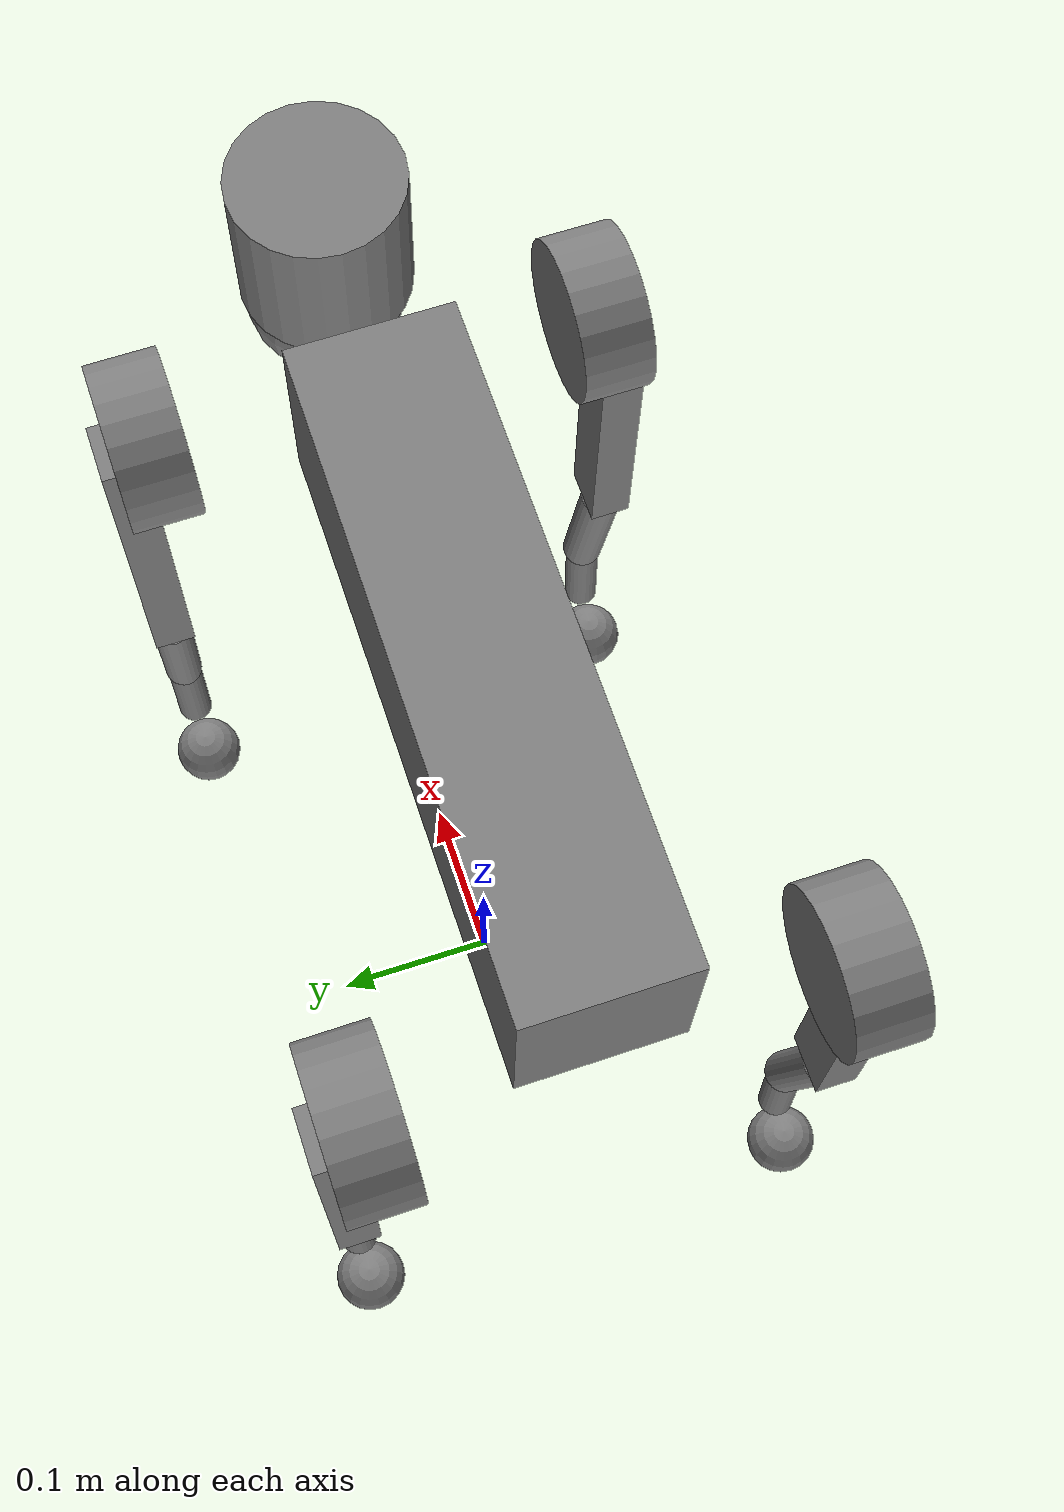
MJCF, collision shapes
<mujoco model="go2 feet only">
  <compiler
    angle="radian"
    meshdir="assets"
    autolimits="true"/>

  <option iterations="1" ls_iterations="5" timestep="0.004" integrator="Euler">
    <flag eulerdamp="disable"/>
  </option>

  <default>
    <default class="go2">
      <geom condim="1" contype="0" conaffinity="0"/>
      <joint axis="0 1 0" damping="0.1" armature="0.01" frictionloss="0.2"/>
      <position forcerange="-23.7 23.7" inheritrange="1" kp="35"/>
      <default class="abduction">
        <joint axis="1 0 0" range="-1.0472 1.0472"/>
      </default>
      <default class="hip">
        <default class="front_hip">
          <joint range="-1.5708 3.4907"/>
        </default>
        <default class="back_hip">
          <joint range="-0.5236 4.5379"/>
        </default>
      </default>
      <default class="knee">
        <joint range="-2.7227 -0.83776"/>
        <position forcerange="-45.43 45.43"/>
      </default>
      <default class="visual">
        <geom type="mesh" contype="0" conaffinity="0" group="2"/>
      </default>
      <default class="collision">
        <geom group="3"/>
      </default>
      <default class="foot">
        <geom
          size="0.022"
          pos="-0.002 0 -0.213"
          type="sphere"
          priority="1"
          condim="3"
          friction="0.6 0.02 0.01"
          contype="0"
          conaffinity="1"/>
      </default>
    </default>
  </default>

  <asset>
    <material name="metal" rgba=".9 .95 .95 1"/>
    <material name="black" rgba="0 0 0 1"/>
    <material name="white" rgba="1 1 1 1"/>
    <material name="gray" rgba="0.671705 0.692426 0.774270 1"/>

    <mesh file="base_0.obj"/>
    <mesh file="base_1.obj"/>
    <mesh file="base_2.obj"/>
    <mesh file="base_3.obj"/>
    <mesh file="base_4.obj"/>
    <mesh file="hip_0.obj"/>
    <mesh file="hip_1.obj"/>
    <mesh file="thigh_0.obj"/>
    <mesh file="thigh_1.obj"/>
    <mesh file="thigh_mirror_0.obj"/>
    <mesh file="thigh_mirror_1.obj"/>
    <mesh file="calf_0.obj"/>
    <mesh file="calf_1.obj"/>
    <mesh file="calf_mirror_0.obj"/>
    <mesh file="calf_mirror_1.obj"/>
    <mesh file="foot.obj"/>
  </asset>

  <worldbody>
    <light name="spotlight" mode="targetbodycom" target="base_link" pos="3 0 4"/>
    <body name="base_link" pos="0 0 0.445" childclass="go2">
      <camera name="track" pos="0.846 -1.3 0.316" xyaxes="0.866 0.500 0.000 -0.171 0.296 0.940" mode="trackcom"/>
      <camera name="side" pos="0 -1 .3" xyaxes="1 0 0 0 1 2" mode="trackcom"/>
      <site name="head" pos="0.3 0 0" rgba="1 0 0 1" size="0.02" group="5"/>
      <inertial
        pos="0.021112 0 -0.005366"
        quat="-0.000543471 0.713435 -0.00173769 0.700719"
        mass="6.921"
        diaginertia="0.107027 0.0980771 0.0244531"/>
      <freejoint/>
      <geom mesh="base_0" material="black" class="visual"/>
      <geom mesh="base_1" material="black" class="visual"/>
      <geom mesh="base_2" material="black" class="visual"/>
      <geom mesh="base_3" material="white" class="visual"/>
      <geom mesh="base_4" material="gray" class="visual"/>
      <geom size="0.1881 0.04675 0.057" type="box" class="collision"/>
      <geom size="0.05 0.045" pos="0.285 0 0.01" type="cylinder" class="collision"/>
      <geom size="0.047" pos="0.293 0 -0.06" type="sphere" class="collision"/>
      <site name="imu" pos="-0.02557 0 0.04232" group="5"/>

      <body name="FL_hip" pos="0.1934 0.0465 0">
        <inertial
          pos="-0.0054 0.00194 -0.000105"
          quat="0.497014 0.499245 0.505462 0.498237"
          mass="0.678"
          diaginertia="0.00088403 0.000596003 0.000479967"/>
        <joint name="FL_hip_joint" class="abduction"/>
        <geom mesh="hip_0" material="metal" class="visual"/>
        <geom mesh="hip_1" material="gray" class="visual"/>
        <geom size="0.046 0.02" pos="0 0.08 0" quat="1 1 0 0" type="cylinder" class="collision"/>
        <body name="FL_thigh" pos="0 0.0955 0">
          <inertial
            pos="-0.00374 -0.0223 -0.0327"
            quat="0.829533 0.0847635 -0.0200632 0.551623"
            mass="1.152"
            diaginertia="0.00594973 0.00584149 0.000878787"/>
          <joint name="FL_thigh_joint" class="front_hip"/>
          <geom mesh="thigh_0" material="metal" class="visual"/>
          <geom mesh="thigh_1" material="gray" class="visual"/>
          <geom size="0.1065 0.01225 0.017" pos="0 0 -0.1065" quat="0.707107 0 0.707107 0" type="box" class="collision"/>
          <body name="FL_calf" pos="0 0 -0.213">
            <inertial
              pos="0.00629595 -0.000622121 -0.141417"
              quat="0.710672 0.00154099 -0.00450087 0.703508"
              mass="0.241352"
              diaginertia="0.0014901 0.00146356 5.31397e-05"/>
            <joint name="FL_calf_joint" class="knee"/>
            <geom mesh="calf_0" material="gray" class="visual"/>
            <geom mesh="calf_1" material="black" class="visual"/>
            <geom size="0.012 0.06" pos="0.008 0 -0.06" quat="0.994493 0 -0.104807 0" type="cylinder" class="collision"/>
            <geom size="0.011 0.0325" pos="0.02 0 -0.148" quat="0.999688 0 0.0249974 0" type="cylinder" class="collision"/>
            <geom pos="0 0 -0.213" mesh="foot" class="visual" material="black"/>
            <geom name="FL" class="foot"/>
            <site name="FL" pos="0 0 -0.213" type="sphere" size="0.023" group="5"/>
          </body>
        </body>
      </body>

      <body name="FR_hip" pos="0.1934 -0.0465 0">
        <inertial
          pos="-0.0054 -0.00194 -0.000105"
          quat="0.498237 0.505462 0.499245 0.497014"
          mass="0.678"
          diaginertia="0.00088403 0.000596003 0.000479967"/>
        <joint name="FR_hip_joint" class="abduction"/>
        <geom mesh="hip_0" material="metal" class="visual" quat="4.63268e-05 1 0 0"/>
        <geom mesh="hip_1" material="gray" class="visual" quat="4.63268e-05 1 0 0"/>
        <geom size="0.046 0.02" pos="0 -0.08 0" quat="0.707107 0.707107 0 0" type="cylinder" class="collision"/>
        <body name="FR_thigh" pos="0 -0.0955 0">
          <inertial
            pos="-0.00374 0.0223 -0.0327"
            quat="0.551623 -0.0200632 0.0847635 0.829533"
            mass="1.152"
            diaginertia="0.00594973 0.00584149 0.000878787"/>
          <joint name="FR_thigh_joint" class="front_hip"/>
          <geom mesh="thigh_mirror_0" material="metal" class="visual"/>
          <geom mesh="thigh_mirror_1" material="gray" class="visual"/>
          <geom size="0.1065 0.01225 0.017" pos="0 0 -0.1065" quat="0.707107 0 0.707107 0" type="box" class="collision"/>
          <body name="FR_calf" pos="0 0 -0.213">
            <inertial
              pos="0.00629595 0.000622121 -0.141417"
              quat="0.703508 -0.00450087 0.00154099 0.710672"
              mass="0.241352"
              diaginertia="0.0014901 0.00146356 5.31397e-05"/>
            <joint name="FR_calf_joint" class="knee"/>
            <geom mesh="calf_mirror_0" material="gray" class="visual"/>
            <geom mesh="calf_mirror_1" material="black" class="visual"/>
            <geom size="0.013 0.06" pos="0.01 0 -0.06" quat="0.995004 0 -0.0998334 0" type="cylinder" class="collision"/>
            <geom size="0.011 0.0325" pos="0.02 0 -0.148" quat="0.999688 0 0.0249974 0" type="cylinder" class="collision"/>
            <geom pos="0 0 -0.213" mesh="foot" class="visual" material="black"/>
            <geom name="FR" class="foot"/>
            <site name="FR" pos="0 0 -0.213" type="sphere" size="0.023" group="5"/>
          </body>
        </body>
      </body>

      <body name="RL_hip" pos="-0.1934 0.0465 0">
        <inertial
          pos="0.0054 0.00194 -0.000105"
          quat="0.505462 0.498237 0.497014 0.499245"
          mass="0.678"
          diaginertia="0.00088403 0.000596003 0.000479967"/>
        <joint name="RL_hip_joint" class="abduction"/>
        <geom mesh="hip_0" material="metal" class="visual" quat="4.63268e-05 0 1 0"/>
        <geom mesh="hip_1" material="gray" class="visual" quat="4.63268e-05 0 1 0"/>
        <geom size="0.046 0.02" pos="0 0.08 0" quat="0.707107 0.707107 0 0" type="cylinder" class="collision"/>
        <body name="RL_thigh" pos="0 0.0955 0">
          <inertial
            pos="-0.00374 -0.0223 -0.0327"
            quat="0.829533 0.0847635 -0.0200632 0.551623"
            mass="1.152"
            diaginertia="0.00594973 0.00584149 0.000878787"/>
          <joint name="RL_thigh_joint" class="back_hip"/>
          <geom mesh="thigh_0" material="metal" class="visual"/>
          <geom mesh="thigh_1" material="gray" class="visual"/>
          <geom size="0.1065 0.01225 0.017" pos="0 0 -0.1065" quat="0.707107 0 0.707107 0" type="box" class="collision"/>
          <body name="RL_calf" pos="0 0 -0.213">
            <inertial
              pos="0.00629595 -0.000622121 -0.141417"
              quat="0.710672 0.00154099 -0.00450087 0.703508"
              mass="0.241352"
              diaginertia="0.0014901 0.00146356 5.31397e-05"/>
            <joint name="RL_calf_joint" class="knee"/>
            <geom mesh="calf_0" material="gray" class="visual"/>
            <geom mesh="calf_1" material="black" class="visual"/>
            <geom size="0.013 0.06" pos="0.01 0 -0.06" quat="0.995004 0 -0.0998334 0" type="cylinder" class="collision"/>
            <geom size="0.011 0.0325" pos="0.02 0 -0.148" quat="0.999688 0 0.0249974 0" type="cylinder" class="collision"/>
            <geom pos="0 0 -0.213" mesh="foot" class="visual" material="black"/>
            <geom name="RL" class="foot"/>
            <site name="RL" pos="0 0 -0.213" type="sphere" size="0.023" group="5"/>
          </body>
        </body>
      </body>

      <body name="RR_hip" pos="-0.1934 -0.0465 0">
        <inertial
          pos="0.0054 -0.00194 -0.000105"
          quat="0.499245 0.497014 0.498237 0.505462"
          mass="0.678"
          diaginertia="0.00088403 0.000596003 0.000479967"/>
        <joint name="RR_hip_joint" class="abduction"/>
        <geom mesh="hip_0" material="metal" class="visual" quat="2.14617e-09 4.63268e-05 4.63268e-05 -1"/>
        <geom mesh="hip_1" material="gray" class="visual" quat="2.14617e-09 4.63268e-05 4.63268e-05 -1"/>
        <geom size="0.046 0.02" pos="0 -0.08 0" quat="0.707107 0.707107 0 0" type="cylinder" class="collision"/>
        <body name="RR_thigh" pos="0 -0.0955 0">
          <inertial
            pos="-0.00374 0.0223 -0.0327"
            quat="0.551623 -0.0200632 0.0847635 0.829533"
            mass="1.152"
            diaginertia="0.00594973 0.00584149 0.000878787"/>
          <joint name="RR_thigh_joint" class="back_hip"/>
          <geom mesh="thigh_mirror_0" material="metal" class="visual"/>
          <geom mesh="thigh_mirror_1" material="gray" class="visual"/>
          <geom size="0.1065 0.01225 0.017" pos="0 0 -0.1065" quat="0.707107 0 0.707107 0" type="box" class="collision"/>
          <body name="RR_calf" pos="0 0 -0.213">
            <inertial
              pos="0.00629595 0.000622121 -0.141417"
              quat="0.703508 -0.00450087 0.00154099 0.710672"
              mass="0.241352"
              diaginertia="0.0014901 0.00146356 5.31397e-05"/>
            <joint name="RR_calf_joint" class="knee"/>
            <geom mesh="calf_mirror_0" material="gray" class="visual"/>
            <geom mesh="calf_mirror_1" material="black" class="visual"/>
            <geom size="0.013 0.06" pos="0.01 0 -0.06" quat="0.995004 0 -0.0998334 0" type="cylinder" class="collision"/>
            <geom size="0.011 0.0325" pos="0.02 0 -0.148" quat="0.999688 0 0.0249974 0" type="cylinder" class="collision"/>
            <geom pos="0 0 -0.213" mesh="foot" class="visual" material="black"/>
            <geom name="RR" class="foot"/>
            <site name="RR" pos="0 0 -0.213" type="sphere" size="0.023" group="5"/>
          </body>
        </body>
      </body>
    </body>
  </worldbody>

  <actuator>
    <position class="abduction" name="FL_hip" joint="FL_hip_joint"/>
    <position class="hip" name="FL_thigh" joint="FL_thigh_joint"/>
    <position class="knee" name="FL_calf" joint="FL_calf_joint"/>
    <position class="abduction" name="FR_hip" joint="FR_hip_joint"/>
    <position class="hip" name="FR_thigh" joint="FR_thigh_joint"/>
    <position class="knee" name="FR_calf" joint="FR_calf_joint"/>
    <position class="abduction" name="RL_hip" joint="RL_hip_joint"/>
    <position class="hip" name="RL_thigh" joint="RL_thigh_joint"/>
    <position class="knee" name="RL_calf" joint="RL_calf_joint"/>
    <position class="abduction" name="RR_hip" joint="RR_hip_joint"/>
    <position class="hip" name="RR_thigh" joint="RR_thigh_joint"/>
    <position class="knee" name="RR_calf" joint="RR_calf_joint"/>
  </actuator>

  <sensor>
    <gyro site="imu" name="gyro"/>
    <velocimeter site="imu" name="local_linvel"/>
    <accelerometer site="imu" name="accelerometer"/>
    <framepos objtype="site" objname="imu" name="position"/>
    <framezaxis objtype="site" objname="imu" name="upvector"/>
    <framexaxis objtype="site" objname="imu" name="forwardvector"/>
    <framelinvel objtype="site" objname="imu" name="global_linvel"/>
    <frameangvel objtype="site" objname="imu" name="global_angvel"/>
    <framequat objtype="site" objname="imu" name="orientation"/>
    <framelinvel objtype="site" objname="FL" name="FL_global_linvel"/>
    <framelinvel objtype="site" objname="FR" name="FR_global_linvel"/>
    <framelinvel objtype="site" objname="RL" name="RL_global_linvel"/>
    <framelinvel objtype="site" objname="RR" name="RR_global_linvel"/>
    <framepos objtype="site" objname="FL" name="FL_pos" reftype="site" refname="imu"/>
    <framepos objtype="site" objname="FR" name="FR_pos" reftype="site" refname="imu"/>
    <framepos objtype="site" objname="RL" name="RL_pos" reftype="site" refname="imu"/>
    <framepos objtype="site" objname="RR" name="RR_pos" reftype="site" refname="imu"/>
  </sensor>
</mujoco>
